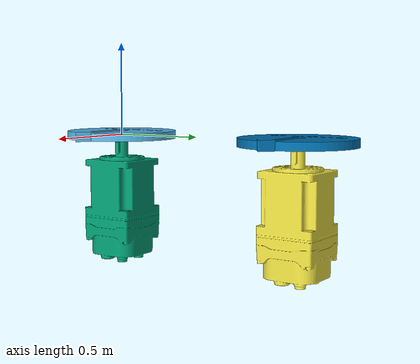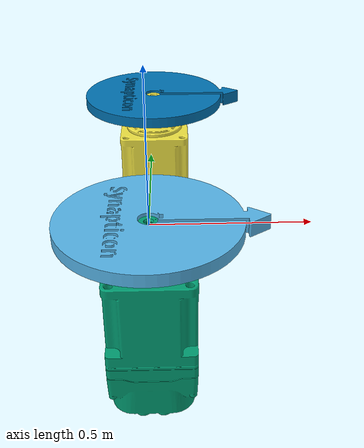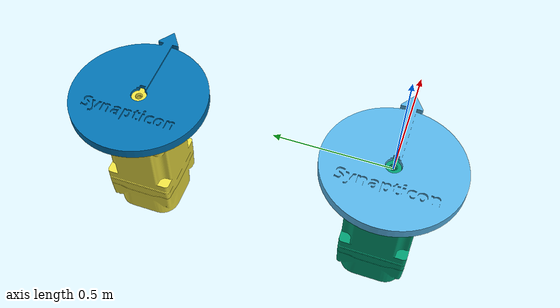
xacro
<?xml version="1.0"?>
<robot xmlns:xacro="http://www.ros.org/wiki/xacro" name="four_dof">
  <xacro:arg name="prefix" default="" />
  <xacro:arg name="eth_device" default="" />
  <xacro:arg name="joint1_mechanical_reduction" default="169.85" />
  <xacro:arg name="joint2_mechanical_reduction" default="169.85" />
  <xacro:arg name="joint3_mechanical_reduction" default="1.0" />
  <xacro:arg name="joint4_mechanical_reduction" default="169.85" />

  <xacro:include filename="$(find synapticon_ros2_control)/urdf/four_dof_macro.urdf.xacro" />

  <xacro:include filename="$(find synapticon_ros2_control)/ros2_control/four_dof.ros2_control.xacro" />

  <link name="world"/>

  <xacro:four_dof parent="world" prefix="$(arg prefix)">
    <origin xyz="0 0 0" rpy="0 0 0" />
  </xacro:four_dof>

  <xacro:four_dof_ros2_control name="FourDofRos2Control" prefix="$(arg prefix)" eth_device="$(arg eth_device)" joint1_mechanical_reduction="$(arg joint1_mechanical_reduction)" joint2_mechanical_reduction="$(arg joint2_mechanical_reduction)" joint3_mechanical_reduction="$(arg joint3_mechanical_reduction)" joint4_mechanical_reduction="$(arg joint4_mechanical_reduction)"/>

</robot>

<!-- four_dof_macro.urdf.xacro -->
<robot xmlns:xacro="http://www.ros.org/wiki/xacro">

  <xacro:macro name="four_dof" params="parent prefix *origin">

  <!-- Constants for robot dimensions -->
  <xacro:property name="mass" value="1" />
  <xacro:property name="width" value="0.1" />
  <xacro:property name="height1" value="2" />
  <xacro:property name="height2" value="1" />
  <xacro:property name="height3" value="1" />
  <xacro:property name="axel_offset" value="0.00" />

  <joint name="${prefix}base_joint" type="fixed">
    <xacro:insert_block name="origin" />
    <parent link="${parent}"/>
    <child link="${prefix}base_link" />
  </joint>

  <!-- Base Link -->
  <link name="${prefix}base_link">
      <visual>
        <origin xyz="0 0 0" rpy="0 0 0"/>
        <geometry>
          <mesh filename="package://synapticon_ros2_control/meshes/flywheel.stl" scale="0.005 0.005 0.005"/>
        </geometry>
      </visual>
      <collision>
        <origin xyz="0 0 0" rpy="0 0 0"/>
        <geometry>
          <mesh filename="package://synapticon_ros2_control/meshes/flywheel.stl" scale="0.005 0.005 0.005"/>
        </geometry>
      </collision>
   </link>

  <joint name="${prefix}joint1" type="continuous">
    <parent link="${prefix}base_link"/>
    <child link="${prefix}link1"/>
    <origin xyz="0 0 0" rpy="0 0 0"/>
    <axis xyz="0 0 1"/>
    <dynamics damping="0.7"/>
    <limit effort="100" velocity="1.0"/>
  </joint>

  <!-- Middle Link -->
  <link name="${prefix}link1">
      <visual>
        <origin xyz="0 0 0" rpy="0 0 0"/>
        <geometry>
          <mesh filename="package://synapticon_ros2_control/meshes/motor.stl" scale="0.005 0.005 0.005"/>
        </geometry>
      </visual>
      <collision>
        <origin xyz="0 0 0" rpy="0 0 0"/>
        <geometry>
          <mesh filename="package://synapticon_ros2_control/meshes/motor.stl" scale="0.005 0.005 0.005"/>
        </geometry>
      </collision>
    </link>

  <joint name="${prefix}fixed_joint" type="fixed">  <!-- Renamed to avoid duplicate base_joint -->
    <parent link="${prefix}link1"/>
    <child link="${prefix}link2"/>
    <origin xyz="0 1.1 0" rpy="0 0 0"/>
  </joint>

  <!-- Fixed Link -->
  <link name="${prefix}link2">
      <visual>
        <origin xyz="0 0 0" rpy="0 0 0"/>
        <geometry>
          <mesh filename="package://synapticon_ros2_control/meshes/motor.stl" scale="0.005 0.005 0.005"/>
        </geometry>
      </visual>
      <collision>
        <origin xyz="0 0 0" rpy="0 0 0"/>
        <geometry>
          <mesh filename="package://synapticon_ros2_control/meshes/motor.stl" scale="0.005 0.005 0.005"/>
        </geometry>
      </collision>
   </link>

  <joint name="${prefix}joint2" type="continuous">
    <parent link="${prefix}link2"/>
    <child link="${prefix}link3"/>
    <origin xyz="0 0 0" rpy="0 0 0"/>
    <axis xyz="0 0 1"/>
    <dynamics damping="0.7"/>
    <limit effort="100" velocity="1.0"/>
  </joint>

  <!-- Flywheel 2 Link -->
  <link name="${prefix}link3">
      <visual>
        <origin xyz="0 0 0" rpy="0 0 0"/>
        <geometry>
          <mesh filename="package://synapticon_ros2_control/meshes/flywheel.stl" scale="0.005 0.005 0.005"/>
        </geometry>
      </visual>
      <collision>
        <origin xyz="0 0 0" rpy="0 0 0"/>
        <geometry>
          <mesh filename="package://synapticon_ros2_control/meshes/flywheel.stl" scale="0.005 0.005 0.005"/>
        </geometry>
      </collision>
   </link>

  </xacro:macro>

</robot>
